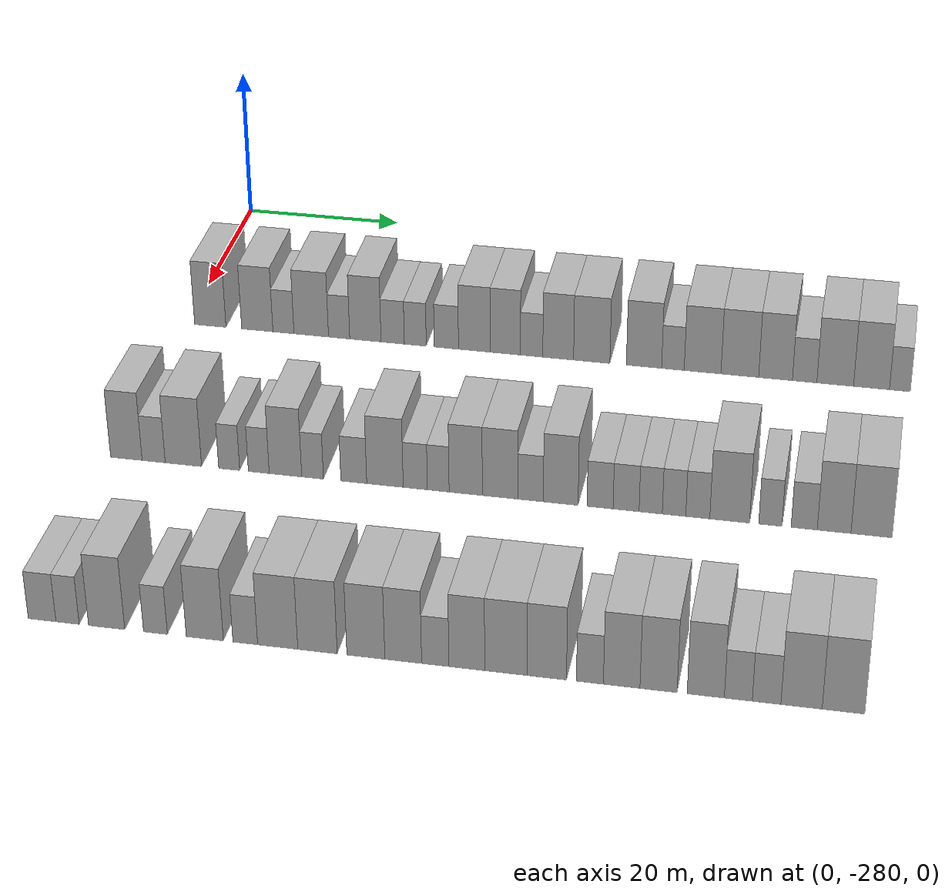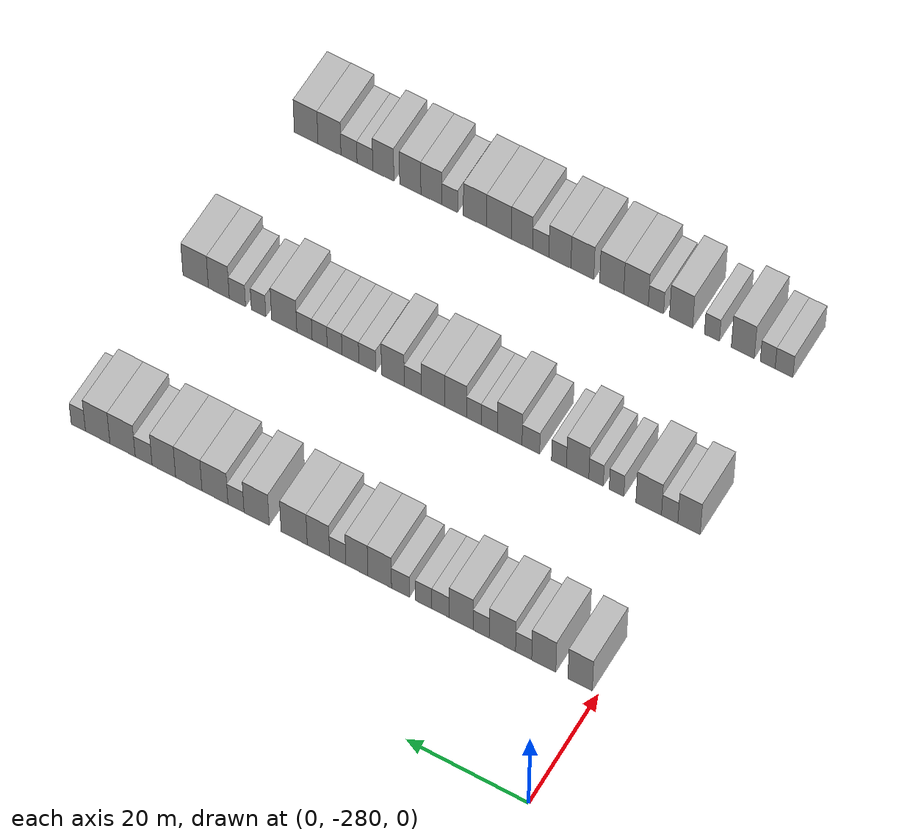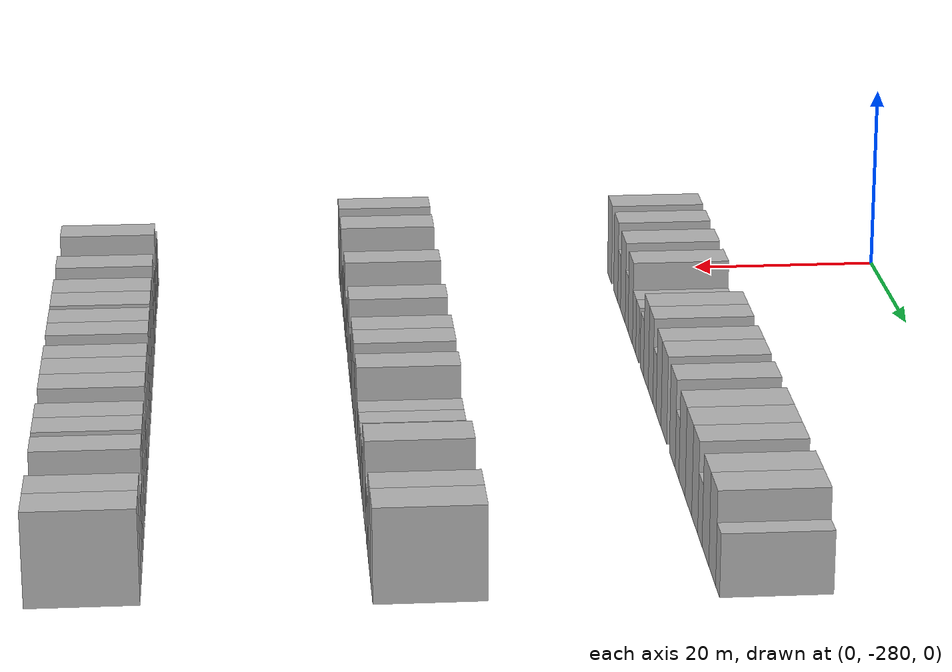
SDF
<sdf version="1.6">
 <world name="default">
  <model name="building_1">
   <static>1</static>
   <pose>25.0000 -277.0038 0 0.000000 0.000000 0.000000</pose>
   <link name="link">
    <pose>0 0 4.50 0 0 0</pose>
    <collision name="collision"><geometry><box><size>10.0000 3.9925 9.0000</size></box></geometry></collision>
    <visual name="visual">
     <cast_shadows>0</cast_shadows>
     <geometry><box><size>10.0000 3.9925 9.0000</size></box></geometry>
     <material>
      <script>
       <uri>model://HANNAS_wall/materials/scripts</uri>
       <uri>model://HANNAS_wall/materials/textures</uri>
       <name>vrc/HANNAS_wall</name>
      </script>
     </material>
    </visual>
   </link>
  </model>
  <model name="building_2">
   <static>1</static>
   <pose>25.0000 -271.0248 0 0.000000 0.000000 0.000000</pose>
   <link name="link">
    <pose>0 0 4.50 0 0 0</pose>
    <collision name="collision"><geometry><box><size>10.0000 3.9655 9.0000</size></box></geometry></collision>
    <visual name="visual">
     <cast_shadows>0</cast_shadows>
     <geometry><box><size>10.0000 3.9655 9.0000</size></box></geometry>
     <material>
      <script>
       <uri>model://HANNAS_wall/materials/scripts</uri>
       <uri>model://HANNAS_wall/materials/textures</uri>
       <name>vrc/HANNAS_wall</name>
      </script>
     </material>
    </visual>
   </link>
  </model>
  <model name="building_3">
   <static>1</static>
   <pose>25.0000 -267.7097 0 0.000000 0.000000 0.000000</pose>
   <link name="link">
    <pose>0 0 3.00 0 0 0</pose>
    <collision name="collision"><geometry><box><size>10.0000 2.6647 6.0000</size></box></geometry></collision>
    <visual name="visual">
     <cast_shadows>0</cast_shadows>
     <geometry><box><size>10.0000 2.6647 6.0000</size></box></geometry>
     <material>
      <script>
       <uri>model://HANNAS_wall/materials/scripts</uri>
       <uri>model://HANNAS_wall/materials/textures</uri>
       <name>vrc/HANNAS_wall</name>
      </script>
     </material>
    </visual>
   </link>
  </model>
  <model name="building_4">
   <static>1</static>
   <pose>25.0000 -264.2000 0 0.000000 0.000000 0.000000</pose>
   <link name="link">
    <pose>0 0 4.50 0 0 0</pose>
    <collision name="collision"><geometry><box><size>10.0000 4.3547 9.0000</size></box></geometry></collision>
    <visual name="visual">
     <cast_shadows>0</cast_shadows>
     <geometry><box><size>10.0000 4.3547 9.0000</size></box></geometry>
     <material>
      <script>
       <uri>model://HANNAS_wall/materials/scripts</uri>
       <uri>model://HANNAS_wall/materials/textures</uri>
       <name>vrc/HANNAS_wall</name>
      </script>
     </material>
    </visual>
   </link>
  </model>
  <model name="building_5">
   <static>1</static>
   <pose>25.0000 -260.6877 0 0.000000 0.000000 0.000000</pose>
   <link name="link">
    <pose>0 0 3.00 0 0 0</pose>
    <collision name="collision"><geometry><box><size>10.0000 2.6699 6.0000</size></box></geometry></collision>
    <visual name="visual">
     <cast_shadows>0</cast_shadows>
     <geometry><box><size>10.0000 2.6699 6.0000</size></box></geometry>
     <material>
      <script>
       <uri>model://HANNAS_wall/materials/scripts</uri>
       <uri>model://HANNAS_wall/materials/textures</uri>
       <name>vrc/HANNAS_wall</name>
      </script>
     </material>
    </visual>
   </link>
  </model>
  <model name="building_6">
   <static>1</static>
   <pose>25.0000 -257.3909 0 0.000000 0.000000 0.000000</pose>
   <link name="link">
    <pose>0 0 4.50 0 0 0</pose>
    <collision name="collision"><geometry><box><size>10.0000 3.9236 9.0000</size></box></geometry></collision>
    <visual name="visual">
     <cast_shadows>0</cast_shadows>
     <geometry><box><size>10.0000 3.9236 9.0000</size></box></geometry>
     <material>
      <script>
       <uri>model://HANNAS_wall/materials/scripts</uri>
       <uri>model://HANNAS_wall/materials/textures</uri>
       <name>vrc/HANNAS_wall</name>
      </script>
     </material>
    </visual>
   </link>
  </model>
  <model name="building_7">
   <static>1</static>
   <pose>25.0000 -253.9746 0 0.000000 0.000000 0.000000</pose>
   <link name="link">
    <pose>0 0 3.00 0 0 0</pose>
    <collision name="collision"><geometry><box><size>10.0000 2.9091 6.0000</size></box></geometry></collision>
    <visual name="visual">
     <cast_shadows>0</cast_shadows>
     <geometry><box><size>10.0000 2.9091 6.0000</size></box></geometry>
     <material>
      <script>
       <uri>model://HANNAS_wall/materials/scripts</uri>
       <uri>model://HANNAS_wall/materials/textures</uri>
       <name>vrc/HANNAS_wall</name>
      </script>
     </material>
    </visual>
   </link>
  </model>
  <model name="building_8">
   <static>1</static>
   <pose>25.0000 -251.1587 0 0.000000 0.000000 0.000000</pose>
   <link name="link">
    <pose>0 0 3.00 0 0 0</pose>
    <collision name="collision"><geometry><box><size>10.0000 2.7225 6.0000</size></box></geometry></collision>
    <visual name="visual">
     <cast_shadows>0</cast_shadows>
     <geometry><box><size>10.0000 2.7225 6.0000</size></box></geometry>
     <material>
      <script>
       <uri>model://HANNAS_wall/materials/scripts</uri>
       <uri>model://HANNAS_wall/materials/textures</uri>
       <name>vrc/HANNAS_wall</name>
      </script>
     </material>
    </visual>
   </link>
  </model>
  <model name="building_9">
   <static>1</static>
   <pose>25.0000 -247.2979 0 0.000000 0.000000 0.000000</pose>
   <link name="link">
    <pose>0 0 3.00 0 0 0</pose>
    <collision name="collision"><geometry><box><size>10.0000 2.9992 6.0000</size></box></geometry></collision>
    <visual name="visual">
     <cast_shadows>0</cast_shadows>
     <geometry><box><size>10.0000 2.9992 6.0000</size></box></geometry>
     <material>
      <script>
       <uri>model://HANNAS_wall/materials/scripts</uri>
       <uri>model://HANNAS_wall/materials/textures</uri>
       <name>vrc/HANNAS_wall</name>
      </script>
     </material>
    </visual>
   </link>
  </model>
  <model name="building_10">
   <static>1</static>
   <pose>25.0000 -243.8236 0 0.000000 0.000000 0.000000</pose>
   <link name="link">
    <pose>0 0 4.50 0 0 0</pose>
    <collision name="collision"><geometry><box><size>10.0000 3.9494 9.0000</size></box></geometry></collision>
    <visual name="visual">
     <cast_shadows>0</cast_shadows>
     <geometry><box><size>10.0000 3.9494 9.0000</size></box></geometry>
     <material>
      <script>
       <uri>model://HANNAS_wall/materials/scripts</uri>
       <uri>model://HANNAS_wall/materials/textures</uri>
       <name>vrc/HANNAS_wall</name>
      </script>
     </material>
    </visual>
   </link>
  </model>
  <model name="building_11">
   <static>1</static>
   <pose>25.0000 -240.0031 0 0.000000 0.000000 0.000000</pose>
   <link name="link">
    <pose>0 0 4.50 0 0 0</pose>
    <collision name="collision"><geometry><box><size>10.0000 3.6916 9.0000</size></box></geometry></collision>
    <visual name="visual">
     <cast_shadows>0</cast_shadows>
     <geometry><box><size>10.0000 3.6916 9.0000</size></box></geometry>
     <material>
      <script>
       <uri>model://HANNAS_wall/materials/scripts</uri>
       <uri>model://HANNAS_wall/materials/textures</uri>
       <name>vrc/HANNAS_wall</name>
      </script>
     </material>
    </visual>
   </link>
  </model>
  <model name="building_12">
   <static>1</static>
   <pose>25.0000 -236.7888 0 0.000000 0.000000 0.000000</pose>
   <link name="link">
    <pose>0 0 3.00 0 0 0</pose>
    <collision name="collision"><geometry><box><size>10.0000 2.7369 6.0000</size></box></geometry></collision>
    <visual name="visual">
     <cast_shadows>0</cast_shadows>
     <geometry><box><size>10.0000 2.7369 6.0000</size></box></geometry>
     <material>
      <script>
       <uri>model://HANNAS_wall/materials/scripts</uri>
       <uri>model://HANNAS_wall/materials/textures</uri>
       <name>vrc/HANNAS_wall</name>
      </script>
     </material>
    </visual>
   </link>
  </model>
  <model name="building_13">
   <static>1</static>
   <pose>25.0000 -233.5396 0 0.000000 0.000000 0.000000</pose>
   <link name="link">
    <pose>0 0 4.50 0 0 0</pose>
    <collision name="collision"><geometry><box><size>10.0000 3.7614 9.0000</size></box></geometry></collision>
    <visual name="visual">
     <cast_shadows>0</cast_shadows>
     <geometry><box><size>10.0000 3.7614 9.0000</size></box></geometry>
     <material>
      <script>
       <uri>model://HANNAS_wall/materials/scripts</uri>
       <uri>model://HANNAS_wall/materials/textures</uri>
       <name>vrc/HANNAS_wall</name>
      </script>
     </material>
    </visual>
   </link>
  </model>
  <model name="building_14">
   <static>1</static>
   <pose>25.0000 -229.4503 0 0.000000 0.000000 0.000000</pose>
   <link name="link">
    <pose>0 0 4.50 0 0 0</pose>
    <collision name="collision"><geometry><box><size>10.0000 4.4173 9.0000</size></box></geometry></collision>
    <visual name="visual">
     <cast_shadows>0</cast_shadows>
     <geometry><box><size>10.0000 4.4173 9.0000</size></box></geometry>
     <material>
      <script>
       <uri>model://HANNAS_wall/materials/scripts</uri>
       <uri>model://HANNAS_wall/materials/textures</uri>
       <name>vrc/HANNAS_wall</name>
      </script>
     </material>
    </visual>
   </link>
  </model>
  <model name="building_15">
   <static>1</static>
   <pose>25.0000 -223.1103 0 0.000000 0.000000 0.000000</pose>
   <link name="link">
    <pose>0 0 4.50 0 0 0</pose>
    <collision name="collision"><geometry><box><size>10.0000 4.2626 9.0000</size></box></geometry></collision>
    <visual name="visual">
     <cast_shadows>0</cast_shadows>
     <geometry><box><size>10.0000 4.2626 9.0000</size></box></geometry>
     <material>
      <script>
       <uri>model://HANNAS_wall/materials/scripts</uri>
       <uri>model://HANNAS_wall/materials/textures</uri>
       <name>vrc/HANNAS_wall</name>
      </script>
     </material>
    </visual>
   </link>
  </model>
  <model name="building_16">
   <static>1</static>
   <pose>25.0000 -219.6177 0 0.000000 0.000000 0.000000</pose>
   <link name="link">
    <pose>0 0 3.00 0 0 0</pose>
    <collision name="collision"><geometry><box><size>10.0000 2.7226 6.0000</size></box></geometry></collision>
    <visual name="visual">
     <cast_shadows>0</cast_shadows>
     <geometry><box><size>10.0000 2.7226 6.0000</size></box></geometry>
     <material>
      <script>
       <uri>model://HANNAS_wall/materials/scripts</uri>
       <uri>model://HANNAS_wall/materials/textures</uri>
       <name>vrc/HANNAS_wall</name>
      </script>
     </material>
    </visual>
   </link>
  </model>
  <model name="building_17">
   <static>1</static>
   <pose>25.0000 -216.0488 0 0.000000 0.000000 0.000000</pose>
   <link name="link">
    <pose>0 0 4.50 0 0 0</pose>
    <collision name="collision"><geometry><box><size>10.0000 4.4151 9.0000</size></box></geometry></collision>
    <visual name="visual">
     <cast_shadows>0</cast_shadows>
     <geometry><box><size>10.0000 4.4151 9.0000</size></box></geometry>
     <material>
      <script>
       <uri>model://HANNAS_wall/materials/scripts</uri>
       <uri>model://HANNAS_wall/materials/textures</uri>
       <name>vrc/HANNAS_wall</name>
      </script>
     </material>
    </visual>
   </link>
  </model>
  <model name="building_18">
   <static>1</static>
   <pose>25.0000 -211.5920 0 0.000000 0.000000 0.000000</pose>
   <link name="link">
    <pose>0 0 4.50 0 0 0</pose>
    <collision name="collision"><geometry><box><size>10.0000 4.4987 9.0000</size></box></geometry></collision>
    <visual name="visual">
     <cast_shadows>0</cast_shadows>
     <geometry><box><size>10.0000 4.4987 9.0000</size></box></geometry>
     <material>
      <script>
       <uri>model://HANNAS_wall/materials/scripts</uri>
       <uri>model://HANNAS_wall/materials/textures</uri>
       <name>vrc/HANNAS_wall</name>
      </script>
     </material>
    </visual>
   </link>
  </model>
  <model name="building_19">
   <static>1</static>
   <pose>25.0000 -207.3325 0 0.000000 0.000000 0.000000</pose>
   <link name="link">
    <pose>0 0 4.50 0 0 0</pose>
    <collision name="collision"><geometry><box><size>10.0000 4.0202 9.0000</size></box></geometry></collision>
    <visual name="visual">
     <cast_shadows>0</cast_shadows>
     <geometry><box><size>10.0000 4.0202 9.0000</size></box></geometry>
     <material>
      <script>
       <uri>model://HANNAS_wall/materials/scripts</uri>
       <uri>model://HANNAS_wall/materials/textures</uri>
       <name>vrc/HANNAS_wall</name>
      </script>
     </material>
    </visual>
   </link>
  </model>
  <model name="building_20">
   <static>1</static>
   <pose>25.0000 -203.8742 0 0.000000 0.000000 0.000000</pose>
   <link name="link">
    <pose>0 0 3.00 0 0 0</pose>
    <collision name="collision"><geometry><box><size>10.0000 2.8964 6.0000</size></box></geometry></collision>
    <visual name="visual">
     <cast_shadows>0</cast_shadows>
     <geometry><box><size>10.0000 2.8964 6.0000</size></box></geometry>
     <material>
      <script>
       <uri>model://HANNAS_wall/materials/scripts</uri>
       <uri>model://HANNAS_wall/materials/textures</uri>
       <name>vrc/HANNAS_wall</name>
      </script>
     </material>
    </visual>
   </link>
  </model>
  <model name="building_21">
   <static>1</static>
   <pose>25.0000 -200.2595 0 0.000000 0.000000 0.000000</pose>
   <link name="link">
    <pose>0 0 4.50 0 0 0</pose>
    <collision name="collision"><geometry><box><size>10.0000 4.3330 9.0000</size></box></geometry></collision>
    <visual name="visual">
     <cast_shadows>0</cast_shadows>
     <geometry><box><size>10.0000 4.3330 9.0000</size></box></geometry>
     <material>
      <script>
       <uri>model://HANNAS_wall/materials/scripts</uri>
       <uri>model://HANNAS_wall/materials/textures</uri>
       <name>vrc/HANNAS_wall</name>
      </script>
     </material>
    </visual>
   </link>
  </model>
  <model name="building_22">
   <static>1</static>
   <pose>25.0000 -195.9828 0 0.000000 0.000000 0.000000</pose>
   <link name="link">
    <pose>0 0 4.50 0 0 0</pose>
    <collision name="collision"><geometry><box><size>10.0000 4.2205 9.0000</size></box></geometry></collision>
    <visual name="visual">
     <cast_shadows>0</cast_shadows>
     <geometry><box><size>10.0000 4.2205 9.0000</size></box></geometry>
     <material>
      <script>
       <uri>model://HANNAS_wall/materials/scripts</uri>
       <uri>model://HANNAS_wall/materials/textures</uri>
       <name>vrc/HANNAS_wall</name>
      </script>
     </material>
    </visual>
   </link>
  </model>
  <model name="building_23">
   <static>1</static>
   <pose>25.0000 -192.6493 0 0.000000 0.000000 0.000000</pose>
   <link name="link">
    <pose>0 0 3.00 0 0 0</pose>
    <collision name="collision"><geometry><box><size>10.0000 2.4464 6.0000</size></box></geometry></collision>
    <visual name="visual">
     <cast_shadows>0</cast_shadows>
     <geometry><box><size>10.0000 2.4464 6.0000</size></box></geometry>
     <material>
      <script>
       <uri>model://HANNAS_wall/materials/scripts</uri>
       <uri>model://HANNAS_wall/materials/textures</uri>
       <name>vrc/HANNAS_wall</name>
      </script>
     </material>
    </visual>
   </link>
  </model>
  <model name="building_147">
   <static>1</static>
   <pose>55.0000 -278.1471 0 0.000000 0.000000 0.000000</pose>
   <link name="link">
    <pose>0 0 4.50 0 0 0</pose>
    <collision name="collision"><geometry><box><size>10.0000 3.7057 9.0000</size></box></geometry></collision>
    <visual name="visual">
     <cast_shadows>0</cast_shadows>
     <geometry><box><size>10.0000 3.7057 9.0000</size></box></geometry>
     <material>
      <script>
       <uri>model://HANNAS_wall/materials/scripts</uri>
       <uri>model://HANNAS_wall/materials/textures</uri>
       <name>vrc/HANNAS_wall</name>
      </script>
     </material>
    </visual>
   </link>
  </model>
  <model name="building_148">
   <static>1</static>
   <pose>55.0000 -274.9405 0 0.000000 0.000000 0.000000</pose>
   <link name="link">
    <pose>0 0 3.00 0 0 0</pose>
    <collision name="collision"><geometry><box><size>10.0000 2.7076 6.0000</size></box></geometry></collision>
    <visual name="visual">
     <cast_shadows>0</cast_shadows>
     <geometry><box><size>10.0000 2.7076 6.0000</size></box></geometry>
     <material>
      <script>
       <uri>model://HANNAS_wall/materials/scripts</uri>
       <uri>model://HANNAS_wall/materials/textures</uri>
       <name>vrc/HANNAS_wall</name>
      </script>
     </material>
    </visual>
   </link>
  </model>
  <model name="building_149">
   <static>1</static>
   <pose>55.0000 -271.4610 0 0.000000 0.000000 0.000000</pose>
   <link name="link">
    <pose>0 0 4.50 0 0 0</pose>
    <collision name="collision"><geometry><box><size>10.0000 4.2514 9.0000</size></box></geometry></collision>
    <visual name="visual">
     <cast_shadows>0</cast_shadows>
     <geometry><box><size>10.0000 4.2514 9.0000</size></box></geometry>
     <material>
      <script>
       <uri>model://HANNAS_wall/materials/scripts</uri>
       <uri>model://HANNAS_wall/materials/textures</uri>
       <name>vrc/HANNAS_wall</name>
      </script>
     </material>
    </visual>
   </link>
  </model>
  <model name="building_150">
   <static>1</static>
   <pose>55.0000 -266.1166 0 0.000000 0.000000 0.000000</pose>
   <link name="link">
    <pose>0 0 3.00 0 0 0</pose>
    <collision name="collision"><geometry><box><size>10.0000 2.4373 6.0000</size></box></geometry></collision>
    <visual name="visual">
     <cast_shadows>0</cast_shadows>
     <geometry><box><size>10.0000 2.4373 6.0000</size></box></geometry>
     <material>
      <script>
       <uri>model://HANNAS_wall/materials/scripts</uri>
       <uri>model://HANNAS_wall/materials/textures</uri>
       <name>vrc/HANNAS_wall</name>
      </script>
     </material>
    </visual>
   </link>
  </model>
  <model name="building_151">
   <static>1</static>
   <pose>55.0000 -262.6913 0 0.000000 0.000000 0.000000</pose>
   <link name="link">
    <pose>0 0 3.00 0 0 0</pose>
    <collision name="collision"><geometry><box><size>10.0000 2.4131 6.0000</size></box></geometry></collision>
    <visual name="visual">
     <cast_shadows>0</cast_shadows>
     <geometry><box><size>10.0000 2.4131 6.0000</size></box></geometry>
     <material>
      <script>
       <uri>model://HANNAS_wall/materials/scripts</uri>
       <uri>model://HANNAS_wall/materials/textures</uri>
       <name>vrc/HANNAS_wall</name>
      </script>
     </material>
    </visual>
   </link>
  </model>
  <model name="building_152">
   <static>1</static>
   <pose>55.0000 -259.6075 0 0.000000 0.000000 0.000000</pose>
   <link name="link">
    <pose>0 0 4.50 0 0 0</pose>
    <collision name="collision"><geometry><box><size>10.0000 3.7545 9.0000</size></box></geometry></collision>
    <visual name="visual">
     <cast_shadows>0</cast_shadows>
     <geometry><box><size>10.0000 3.7545 9.0000</size></box></geometry>
     <material>
      <script>
       <uri>model://HANNAS_wall/materials/scripts</uri>
       <uri>model://HANNAS_wall/materials/textures</uri>
       <name>vrc/HANNAS_wall</name>
      </script>
     </material>
    </visual>
   </link>
  </model>
  <model name="building_153">
   <static>1</static>
   <pose>55.0000 -256.4828 0 0.000000 0.000000 0.000000</pose>
   <link name="link">
    <pose>0 0 3.00 0 0 0</pose>
    <collision name="collision"><geometry><box><size>10.0000 2.4949 6.0000</size></box></geometry></collision>
    <visual name="visual">
     <cast_shadows>0</cast_shadows>
     <geometry><box><size>10.0000 2.4949 6.0000</size></box></geometry>
     <material>
      <script>
       <uri>model://HANNAS_wall/materials/scripts</uri>
       <uri>model://HANNAS_wall/materials/textures</uri>
       <name>vrc/HANNAS_wall</name>
      </script>
     </material>
    </visual>
   </link>
  </model>
  <model name="building_154">
   <static>1</static>
   <pose>55.0000 -251.7562 0 0.000000 0.000000 0.000000</pose>
   <link name="link">
    <pose>0 0 3.00 0 0 0</pose>
    <collision name="collision"><geometry><box><size>10.0000 2.9583 6.0000</size></box></geometry></collision>
    <visual name="visual">
     <cast_shadows>0</cast_shadows>
     <geometry><box><size>10.0000 2.9583 6.0000</size></box></geometry>
     <material>
      <script>
       <uri>model://HANNAS_wall/materials/scripts</uri>
       <uri>model://HANNAS_wall/materials/textures</uri>
       <name>vrc/HANNAS_wall</name>
      </script>
     </material>
    </visual>
   </link>
  </model>
  <model name="building_155">
   <static>1</static>
   <pose>55.0000 -248.1993 0 0.000000 0.000000 0.000000</pose>
   <link name="link">
    <pose>0 0 4.50 0 0 0</pose>
    <collision name="collision"><geometry><box><size>10.0000 4.1554 9.0000</size></box></geometry></collision>
    <visual name="visual">
     <cast_shadows>0</cast_shadows>
     <geometry><box><size>10.0000 4.1554 9.0000</size></box></geometry>
     <material>
      <script>
       <uri>model://HANNAS_wall/materials/scripts</uri>
       <uri>model://HANNAS_wall/materials/textures</uri>
       <name>vrc/HANNAS_wall</name>
      </script>
     </material>
    </visual>
   </link>
  </model>
  <model name="building_156">
   <static>1</static>
   <pose>55.0000 -244.7492 0 0.000000 0.000000 0.000000</pose>
   <link name="link">
    <pose>0 0 3.00 0 0 0</pose>
    <collision name="collision"><geometry><box><size>10.0000 2.7448 6.0000</size></box></geometry></collision>
    <visual name="visual">
     <cast_shadows>0</cast_shadows>
     <geometry><box><size>10.0000 2.7448 6.0000</size></box></geometry>
     <material>
      <script>
       <uri>model://HANNAS_wall/materials/scripts</uri>
       <uri>model://HANNAS_wall/materials/textures</uri>
       <name>vrc/HANNAS_wall</name>
      </script>
     </material>
    </visual>
   </link>
  </model>
  <model name="building_157">
   <static>1</static>
   <pose>55.0000 -242.1499 0 0.000000 0.000000 0.000000</pose>
   <link name="link">
    <pose>0 0 3.00 0 0 0</pose>
    <collision name="collision"><geometry><box><size>10.0000 2.4539 6.0000</size></box></geometry></collision>
    <visual name="visual">
     <cast_shadows>0</cast_shadows>
     <geometry><box><size>10.0000 2.4539 6.0000</size></box></geometry>
     <material>
      <script>
       <uri>model://HANNAS_wall/materials/scripts</uri>
       <uri>model://HANNAS_wall/materials/textures</uri>
       <name>vrc/HANNAS_wall</name>
      </script>
     </material>
    </visual>
   </link>
  </model>
  <model name="building_158">
   <static>1</static>
   <pose>55.0000 -239.0483 0 0.000000 0.000000 0.000000</pose>
   <link name="link">
    <pose>0 0 4.50 0 0 0</pose>
    <collision name="collision"><geometry><box><size>10.0000 3.7492 9.0000</size></box></geometry></collision>
    <visual name="visual">
     <cast_shadows>0</cast_shadows>
     <geometry><box><size>10.0000 3.7492 9.0000</size></box></geometry>
     <material>
      <script>
       <uri>model://HANNAS_wall/materials/scripts</uri>
       <uri>model://HANNAS_wall/materials/textures</uri>
       <name>vrc/HANNAS_wall</name>
      </script>
     </material>
    </visual>
   </link>
  </model>
  <model name="building_159">
   <static>1</static>
   <pose>55.0000 -235.1953 0 0.000000 0.000000 0.000000</pose>
   <link name="link">
    <pose>0 0 4.50 0 0 0</pose>
    <collision name="collision"><geometry><box><size>10.0000 3.9569 9.0000</size></box></geometry></collision>
    <visual name="visual">
     <cast_shadows>0</cast_shadows>
     <geometry><box><size>10.0000 3.9569 9.0000</size></box></geometry>
     <material>
      <script>
       <uri>model://HANNAS_wall/materials/scripts</uri>
       <uri>model://HANNAS_wall/materials/textures</uri>
       <name>vrc/HANNAS_wall</name>
      </script>
     </material>
    </visual>
   </link>
  </model>
  <model name="building_160">
   <static>1</static>
   <pose>55.0000 -231.7789 0 0.000000 0.000000 0.000000</pose>
   <link name="link">
    <pose>0 0 3.00 0 0 0</pose>
    <collision name="collision"><geometry><box><size>10.0000 2.8758 6.0000</size></box></geometry></collision>
    <visual name="visual">
     <cast_shadows>0</cast_shadows>
     <geometry><box><size>10.0000 2.8758 6.0000</size></box></geometry>
     <material>
      <script>
       <uri>model://HANNAS_wall/materials/scripts</uri>
       <uri>model://HANNAS_wall/materials/textures</uri>
       <name>vrc/HANNAS_wall</name>
      </script>
     </material>
    </visual>
   </link>
  </model>
  <model name="building_161">
   <static>1</static>
   <pose>55.0000 -228.4069 0 0.000000 0.000000 0.000000</pose>
   <link name="link">
    <pose>0 0 4.50 0 0 0</pose>
    <collision name="collision"><geometry><box><size>10.0000 3.8682 9.0000</size></box></geometry></collision>
    <visual name="visual">
     <cast_shadows>0</cast_shadows>
     <geometry><box><size>10.0000 3.8682 9.0000</size></box></geometry>
     <material>
      <script>
       <uri>model://HANNAS_wall/materials/scripts</uri>
       <uri>model://HANNAS_wall/materials/textures</uri>
       <name>vrc/HANNAS_wall</name>
      </script>
     </material>
    </visual>
   </link>
  </model>
  <model name="building_162">
   <static>1</static>
   <pose>55.0000 -224.0312 0 0.000000 0.000000 0.000000</pose>
   <link name="link">
    <pose>0 0 3.00 0 0 0</pose>
    <collision name="collision"><geometry><box><size>10.0000 2.8833 6.0000</size></box></geometry></collision>
    <visual name="visual">
     <cast_shadows>0</cast_shadows>
     <geometry><box><size>10.0000 2.8833 6.0000</size></box></geometry>
     <material>
      <script>
       <uri>model://HANNAS_wall/materials/scripts</uri>
       <uri>model://HANNAS_wall/materials/textures</uri>
       <name>vrc/HANNAS_wall</name>
      </script>
     </material>
    </visual>
   </link>
  </model>
  <model name="building_163">
   <static>1</static>
   <pose>55.0000 -221.1537 0 0.000000 0.000000 0.000000</pose>
   <link name="link">
    <pose>0 0 3.00 0 0 0</pose>
    <collision name="collision"><geometry><box><size>10.0000 2.8718 6.0000</size></box></geometry></collision>
    <visual name="visual">
     <cast_shadows>0</cast_shadows>
     <geometry><box><size>10.0000 2.8718 6.0000</size></box></geometry>
     <material>
      <script>
       <uri>model://HANNAS_wall/materials/scripts</uri>
       <uri>model://HANNAS_wall/materials/textures</uri>
       <name>vrc/HANNAS_wall</name>
      </script>
     </material>
    </visual>
   </link>
  </model>
  <model name="building_164">
   <static>1</static>
   <pose>55.0000 -218.4404 0 0.000000 0.000000 0.000000</pose>
   <link name="link">
    <pose>0 0 3.00 0 0 0</pose>
    <collision name="collision"><geometry><box><size>10.0000 2.5548 6.0000</size></box></geometry></collision>
    <visual name="visual">
     <cast_shadows>0</cast_shadows>
     <geometry><box><size>10.0000 2.5548 6.0000</size></box></geometry>
     <material>
      <script>
       <uri>model://HANNAS_wall/materials/scripts</uri>
       <uri>model://HANNAS_wall/materials/textures</uri>
       <name>vrc/HANNAS_wall</name>
      </script>
     </material>
    </visual>
   </link>
  </model>
  <model name="building_165">
   <static>1</static>
   <pose>55.0000 -215.8712 0 0.000000 0.000000 0.000000</pose>
   <link name="link">
    <pose>0 0 3.00 0 0 0</pose>
    <collision name="collision"><geometry><box><size>10.0000 2.5835 6.0000</size></box></geometry></collision>
    <visual name="visual">
     <cast_shadows>0</cast_shadows>
     <geometry><box><size>10.0000 2.5835 6.0000</size></box></geometry>
     <material>
      <script>
       <uri>model://HANNAS_wall/materials/scripts</uri>
       <uri>model://HANNAS_wall/materials/textures</uri>
       <name>vrc/HANNAS_wall</name>
      </script>
     </material>
    </visual>
   </link>
  </model>
  <model name="building_166">
   <static>1</static>
   <pose>55.0000 -213.2629 0 0.000000 0.000000 0.000000</pose>
   <link name="link">
    <pose>0 0 3.00 0 0 0</pose>
    <collision name="collision"><geometry><box><size>10.0000 2.6332 6.0000</size></box></geometry></collision>
    <visual name="visual">
     <cast_shadows>0</cast_shadows>
     <geometry><box><size>10.0000 2.6332 6.0000</size></box></geometry>
     <material>
      <script>
       <uri>model://HANNAS_wall/materials/scripts</uri>
       <uri>model://HANNAS_wall/materials/textures</uri>
       <name>vrc/HANNAS_wall</name>
      </script>
     </material>
    </visual>
   </link>
  </model>
  <model name="building_167">
   <static>1</static>
   <pose>55.0000 -209.7773 0 0.000000 0.000000 0.000000</pose>
   <link name="link">
    <pose>0 0 4.50 0 0 0</pose>
    <collision name="collision"><geometry><box><size>10.0000 4.3380 9.0000</size></box></geometry></collision>
    <visual name="visual">
     <cast_shadows>0</cast_shadows>
     <geometry><box><size>10.0000 4.3380 9.0000</size></box></geometry>
     <material>
      <script>
       <uri>model://HANNAS_wall/materials/scripts</uri>
       <uri>model://HANNAS_wall/materials/textures</uri>
       <name>vrc/HANNAS_wall</name>
      </script>
     </material>
    </visual>
   </link>
  </model>
  <model name="building_168">
   <static>1</static>
   <pose>55.0000 -205.3520 0 0.000000 0.000000 0.000000</pose>
   <link name="link">
    <pose>0 0 3.00 0 0 0</pose>
    <collision name="collision"><geometry><box><size>10.0000 2.5125 6.0000</size></box></geometry></collision>
    <visual name="visual">
     <cast_shadows>0</cast_shadows>
     <geometry><box><size>10.0000 2.5125 6.0000</size></box></geometry>
     <material>
      <script>
       <uri>model://HANNAS_wall/materials/scripts</uri>
       <uri>model://HANNAS_wall/materials/textures</uri>
       <name>vrc/HANNAS_wall</name>
      </script>
     </material>
    </visual>
   </link>
  </model>
  <model name="building_169">
   <static>1</static>
   <pose>55.0000 -201.6861 0 0.000000 0.000000 0.000000</pose>
   <link name="link">
    <pose>0 0 3.00 0 0 0</pose>
    <collision name="collision"><geometry><box><size>10.0000 2.8193 6.0000</size></box></geometry></collision>
    <visual name="visual">
     <cast_shadows>0</cast_shadows>
     <geometry><box><size>10.0000 2.8193 6.0000</size></box></geometry>
     <material>
      <script>
       <uri>model://HANNAS_wall/materials/scripts</uri>
       <uri>model://HANNAS_wall/materials/textures</uri>
       <name>vrc/HANNAS_wall</name>
      </script>
     </material>
    </visual>
   </link>
  </model>
  <model name="building_170">
   <static>1</static>
   <pose>55.0000 -198.4617 0 0.000000 0.000000 0.000000</pose>
   <link name="link">
    <pose>0 0 4.50 0 0 0</pose>
    <collision name="collision"><geometry><box><size>10.0000 3.6295 9.0000</size></box></geometry></collision>
    <visual name="visual">
     <cast_shadows>0</cast_shadows>
     <geometry><box><size>10.0000 3.6295 9.0000</size></box></geometry>
     <material>
      <script>
       <uri>model://HANNAS_wall/materials/scripts</uri>
       <uri>model://HANNAS_wall/materials/textures</uri>
       <name>vrc/HANNAS_wall</name>
      </script>
     </material>
    </visual>
   </link>
  </model>
  <model name="building_171">
   <static>1</static>
   <pose>55.0000 -194.4421 0 0.000000 0.000000 0.000000</pose>
   <link name="link">
    <pose>0 0 4.50 0 0 0</pose>
    <collision name="collision"><geometry><box><size>10.0000 4.4097 9.0000</size></box></geometry></collision>
    <visual name="visual">
     <cast_shadows>0</cast_shadows>
     <geometry><box><size>10.0000 4.4097 9.0000</size></box></geometry>
     <material>
      <script>
       <uri>model://HANNAS_wall/materials/scripts</uri>
       <uri>model://HANNAS_wall/materials/textures</uri>
       <name>vrc/HANNAS_wall</name>
      </script>
     </material>
    </visual>
   </link>
  </model>
  <model name="building_274">
   <static>1</static>
   <pose>85.0000 -277.5172 0 0.000000 0.000000 0.000000</pose>
   <link name="link">
    <pose>0 0 3.00 0 0 0</pose>
    <collision name="collision"><geometry><box><size>10.0000 2.9656 6.0000</size></box></geometry></collision>
    <visual name="visual">
     <cast_shadows>0</cast_shadows>
     <geometry><box><size>10.0000 2.9656 6.0000</size></box></geometry>
     <material>
      <script>
       <uri>model://HANNAS_wall/materials/scripts</uri>
       <uri>model://HANNAS_wall/materials/textures</uri>
       <name>vrc/HANNAS_wall</name>
      </script>
     </material>
    </visual>
   </link>
  </model>
  <model name="building_275">
   <static>1</static>
   <pose>85.0000 -274.7879 0 0.000000 0.000000 0.000000</pose>
   <link name="link">
    <pose>0 0 3.00 0 0 0</pose>
    <collision name="collision"><geometry><box><size>10.0000 2.4930 6.0000</size></box></geometry></collision>
    <visual name="visual">
     <cast_shadows>0</cast_shadows>
     <geometry><box><size>10.0000 2.4930 6.0000</size></box></geometry>
     <material>
      <script>
       <uri>model://HANNAS_wall/materials/scripts</uri>
       <uri>model://HANNAS_wall/materials/textures</uri>
       <name>vrc/HANNAS_wall</name>
      </script>
     </material>
    </visual>
   </link>
  </model>
  <model name="building_276">
   <static>1</static>
   <pose>85.0000 -270.6113 0 0.000000 0.000000 0.000000</pose>
   <link name="link">
    <pose>0 0 4.50 0 0 0</pose>
    <collision name="collision"><geometry><box><size>10.0000 3.8600 9.0000</size></box></geometry></collision>
    <visual name="visual">
     <cast_shadows>0</cast_shadows>
     <geometry><box><size>10.0000 3.8600 9.0000</size></box></geometry>
     <material>
      <script>
       <uri>model://HANNAS_wall/materials/scripts</uri>
       <uri>model://HANNAS_wall/materials/textures</uri>
       <name>vrc/HANNAS_wall</name>
      </script>
     </material>
    </visual>
   </link>
  </model>
  <model name="building_277">
   <static>1</static>
   <pose>85.0000 -265.4199 0 0.000000 0.000000 0.000000</pose>
   <link name="link">
    <pose>0 0 3.00 0 0 0</pose>
    <collision name="collision"><geometry><box><size>10.0000 2.5228 6.0000</size></box></geometry></collision>
    <visual name="visual">
     <cast_shadows>0</cast_shadows>
     <geometry><box><size>10.0000 2.5228 6.0000</size></box></geometry>
     <material>
      <script>
       <uri>model://HANNAS_wall/materials/scripts</uri>
       <uri>model://HANNAS_wall/materials/textures</uri>
       <name>vrc/HANNAS_wall</name>
      </script>
     </material>
    </visual>
   </link>
  </model>
  <model name="building_278">
   <static>1</static>
   <pose>85.0000 -260.2066 0 0.000000 0.000000 0.000000</pose>
   <link name="link">
    <pose>0 0 4.50 0 0 0</pose>
    <collision name="collision"><geometry><box><size>10.0000 3.9038 9.0000</size></box></geometry></collision>
    <visual name="visual">
     <cast_shadows>0</cast_shadows>
     <geometry><box><size>10.0000 3.9038 9.0000</size></box></geometry>
     <material>
      <script>
       <uri>model://HANNAS_wall/materials/scripts</uri>
       <uri>model://HANNAS_wall/materials/textures</uri>
       <name>vrc/HANNAS_wall</name>
      </script>
     </material>
    </visual>
   </link>
  </model>
  <model name="building_279">
   <static>1</static>
   <pose>85.0000 -255.9607 0 0.000000 0.000000 0.000000</pose>
   <link name="link">
    <pose>0 0 3.00 0 0 0</pose>
    <collision name="collision"><geometry><box><size>10.0000 2.5879 6.0000</size></box></geometry></collision>
    <visual name="visual">
     <cast_shadows>0</cast_shadows>
     <geometry><box><size>10.0000 2.5879 6.0000</size></box></geometry>
     <material>
      <script>
       <uri>model://HANNAS_wall/materials/scripts</uri>
       <uri>model://HANNAS_wall/materials/textures</uri>
       <name>vrc/HANNAS_wall</name>
      </script>
     </material>
    </visual>
   </link>
  </model>
  <model name="building_280">
   <static>1</static>
   <pose>85.0000 -252.5727 0 0.000000 0.000000 0.000000</pose>
   <link name="link">
    <pose>0 0 4.50 0 0 0</pose>
    <collision name="collision"><geometry><box><size>10.0000 4.1881 9.0000</size></box></geometry></collision>
    <visual name="visual">
     <cast_shadows>0</cast_shadows>
     <geometry><box><size>10.0000 4.1881 9.0000</size></box></geometry>
     <material>
      <script>
       <uri>model://HANNAS_wall/materials/scripts</uri>
       <uri>model://HANNAS_wall/materials/textures</uri>
       <name>vrc/HANNAS_wall</name>
      </script>
     </material>
    </visual>
   </link>
  </model>
  <model name="building_281">
   <static>1</static>
   <pose>85.0000 -248.4328 0 0.000000 0.000000 0.000000</pose>
   <link name="link">
    <pose>0 0 4.50 0 0 0</pose>
    <collision name="collision"><geometry><box><size>10.0000 4.0918 9.0000</size></box></geometry></collision>
    <visual name="visual">
     <cast_shadows>0</cast_shadows>
     <geometry><box><size>10.0000 4.0918 9.0000</size></box></geometry>
     <material>
      <script>
       <uri>model://HANNAS_wall/materials/scripts</uri>
       <uri>model://HANNAS_wall/materials/textures</uri>
       <name>vrc/HANNAS_wall</name>
      </script>
     </material>
    </visual>
   </link>
  </model>
  <model name="building_282">
   <static>1</static>
   <pose>85.0000 -243.4276 0 0.000000 0.000000 0.000000</pose>
   <link name="link">
    <pose>0 0 4.50 0 0 0</pose>
    <collision name="collision"><geometry><box><size>10.0000 3.9186 9.0000</size></box></geometry></collision>
    <visual name="visual">
     <cast_shadows>0</cast_shadows>
     <geometry><box><size>10.0000 3.9186 9.0000</size></box></geometry>
     <material>
      <script>
       <uri>model://HANNAS_wall/materials/scripts</uri>
       <uri>model://HANNAS_wall/materials/textures</uri>
       <name>vrc/HANNAS_wall</name>
      </script>
     </material>
    </visual>
   </link>
  </model>
  <model name="building_283">
   <static>1</static>
   <pose>85.0000 -239.5821 0 0.000000 0.000000 0.000000</pose>
   <link name="link">
    <pose>0 0 4.50 0 0 0</pose>
    <collision name="collision"><geometry><box><size>10.0000 3.7724 9.0000</size></box></geometry></collision>
    <visual name="visual">
     <cast_shadows>0</cast_shadows>
     <geometry><box><size>10.0000 3.7724 9.0000</size></box></geometry>
     <material>
      <script>
       <uri>model://HANNAS_wall/materials/scripts</uri>
       <uri>model://HANNAS_wall/materials/textures</uri>
       <name>vrc/HANNAS_wall</name>
      </script>
     </material>
    </visual>
   </link>
  </model>
  <model name="building_284">
   <static>1</static>
   <pose>85.0000 -236.3003 0 0.000000 0.000000 0.000000</pose>
   <link name="link">
    <pose>0 0 3.00 0 0 0</pose>
    <collision name="collision"><geometry><box><size>10.0000 2.7912 6.0000</size></box></geometry></collision>
    <visual name="visual">
     <cast_shadows>0</cast_shadows>
     <geometry><box><size>10.0000 2.7912 6.0000</size></box></geometry>
     <material>
      <script>
       <uri>model://HANNAS_wall/materials/scripts</uri>
       <uri>model://HANNAS_wall/materials/textures</uri>
       <name>vrc/HANNAS_wall</name>
      </script>
     </material>
    </visual>
   </link>
  </model>
  <model name="building_285">
   <static>1</static>
   <pose>85.0000 -233.0832 0 0.000000 0.000000 0.000000</pose>
   <link name="link">
    <pose>0 0 4.50 0 0 0</pose>
    <collision name="collision"><geometry><box><size>10.0000 3.6431 9.0000</size></box></geometry></collision>
    <visual name="visual">
     <cast_shadows>0</cast_shadows>
     <geometry><box><size>10.0000 3.6431 9.0000</size></box></geometry>
     <material>
      <script>
       <uri>model://HANNAS_wall/materials/scripts</uri>
       <uri>model://HANNAS_wall/materials/textures</uri>
       <name>vrc/HANNAS_wall</name>
      </script>
     </material>
    </visual>
   </link>
  </model>
  <model name="building_286">
   <static>1</static>
   <pose>85.0000 -229.1243 0 0.000000 0.000000 0.000000</pose>
   <link name="link">
    <pose>0 0 4.50 0 0 0</pose>
    <collision name="collision"><geometry><box><size>10.0000 4.2746 9.0000</size></box></geometry></collision>
    <visual name="visual">
     <cast_shadows>0</cast_shadows>
     <geometry><box><size>10.0000 4.2746 9.0000</size></box></geometry>
     <material>
      <script>
       <uri>model://HANNAS_wall/materials/scripts</uri>
       <uri>model://HANNAS_wall/materials/textures</uri>
       <name>vrc/HANNAS_wall</name>
      </script>
     </material>
    </visual>
   </link>
  </model>
  <model name="building_287">
   <static>1</static>
   <pose>85.0000 -224.9947 0 0.000000 0.000000 0.000000</pose>
   <link name="link">
    <pose>0 0 4.50 0 0 0</pose>
    <collision name="collision"><geometry><box><size>10.0000 3.9846 9.0000</size></box></geometry></collision>
    <visual name="visual">
     <cast_shadows>0</cast_shadows>
     <geometry><box><size>10.0000 3.9846 9.0000</size></box></geometry>
     <material>
      <script>
       <uri>model://HANNAS_wall/materials/scripts</uri>
       <uri>model://HANNAS_wall/materials/textures</uri>
       <name>vrc/HANNAS_wall</name>
      </script>
     </material>
    </visual>
   </link>
  </model>
  <model name="building_288">
   <static>1</static>
   <pose>85.0000 -220.6516 0 0.000000 0.000000 0.000000</pose>
   <link name="link">
    <pose>0 0 3.00 0 0 0</pose>
    <collision name="collision"><geometry><box><size>10.0000 2.7015 6.0000</size></box></geometry></collision>
    <visual name="visual">
     <cast_shadows>0</cast_shadows>
     <geometry><box><size>10.0000 2.7015 6.0000</size></box></geometry>
     <material>
      <script>
       <uri>model://HANNAS_wall/materials/scripts</uri>
       <uri>model://HANNAS_wall/materials/textures</uri>
       <name>vrc/HANNAS_wall</name>
      </script>
     </material>
    </visual>
   </link>
  </model>
  <model name="building_289">
   <static>1</static>
   <pose>85.0000 -217.4745 0 0.000000 0.000000 0.000000</pose>
   <link name="link">
    <pose>0 0 4.50 0 0 0</pose>
    <collision name="collision"><geometry><box><size>10.0000 3.6526 9.0000</size></box></geometry></collision>
    <visual name="visual">
     <cast_shadows>0</cast_shadows>
     <geometry><box><size>10.0000 3.6526 9.0000</size></box></geometry>
     <material>
      <script>
       <uri>model://HANNAS_wall/materials/scripts</uri>
       <uri>model://HANNAS_wall/materials/textures</uri>
       <name>vrc/HANNAS_wall</name>
      </script>
     </material>
    </visual>
   </link>
  </model>
  <model name="building_290">
   <static>1</static>
   <pose>85.0000 -213.8015 0 0.000000 0.000000 0.000000</pose>
   <link name="link">
    <pose>0 0 4.50 0 0 0</pose>
    <collision name="collision"><geometry><box><size>10.0000 3.6935 9.0000</size></box></geometry></collision>
    <visual name="visual">
     <cast_shadows>0</cast_shadows>
     <geometry><box><size>10.0000 3.6935 9.0000</size></box></geometry>
     <material>
      <script>
       <uri>model://HANNAS_wall/materials/scripts</uri>
       <uri>model://HANNAS_wall/materials/textures</uri>
       <name>vrc/HANNAS_wall</name>
      </script>
     </material>
    </visual>
   </link>
  </model>
  <model name="building_291">
   <static>1</static>
   <pose>85.0000 -209.1180 0 0.000000 0.000000 0.000000</pose>
   <link name="link">
    <pose>0 0 4.50 0 0 0</pose>
    <collision name="collision"><geometry><box><size>10.0000 3.6734 9.0000</size></box></geometry></collision>
    <visual name="visual">
     <cast_shadows>0</cast_shadows>
     <geometry><box><size>10.0000 3.6734 9.0000</size></box></geometry>
     <material>
      <script>
       <uri>model://HANNAS_wall/materials/scripts</uri>
       <uri>model://HANNAS_wall/materials/textures</uri>
       <name>vrc/HANNAS_wall</name>
      </script>
     </material>
    </visual>
   </link>
  </model>
  <model name="building_292">
   <static>1</static>
   <pose>85.0000 -205.9049 0 0.000000 0.000000 0.000000</pose>
   <link name="link">
    <pose>0 0 3.00 0 0 0</pose>
    <collision name="collision"><geometry><box><size>10.0000 2.7529 6.0000</size></box></geometry></collision>
    <visual name="visual">
     <cast_shadows>0</cast_shadows>
     <geometry><box><size>10.0000 2.7529 6.0000</size></box></geometry>
     <material>
      <script>
       <uri>model://HANNAS_wall/materials/scripts</uri>
       <uri>model://HANNAS_wall/materials/textures</uri>
       <name>vrc/HANNAS_wall</name>
      </script>
     </material>
    </visual>
   </link>
  </model>
  <model name="building_293">
   <static>1</static>
   <pose>85.0000 -203.1267 0 0.000000 0.000000 0.000000</pose>
   <link name="link">
    <pose>0 0 3.00 0 0 0</pose>
    <collision name="collision"><geometry><box><size>10.0000 2.8036 6.0000</size></box></geometry></collision>
    <visual name="visual">
     <cast_shadows>0</cast_shadows>
     <geometry><box><size>10.0000 2.8036 6.0000</size></box></geometry>
     <material>
      <script>
       <uri>model://HANNAS_wall/materials/scripts</uri>
       <uri>model://HANNAS_wall/materials/textures</uri>
       <name>vrc/HANNAS_wall</name>
      </script>
     </material>
    </visual>
   </link>
  </model>
  <model name="building_294">
   <static>1</static>
   <pose>85.0000 -199.7115 0 0.000000 0.000000 0.000000</pose>
   <link name="link">
    <pose>0 0 4.50 0 0 0</pose>
    <collision name="collision"><geometry><box><size>10.0000 4.0269 9.0000</size></box></geometry></collision>
    <visual name="visual">
     <cast_shadows>0</cast_shadows>
     <geometry><box><size>10.0000 4.0269 9.0000</size></box></geometry>
     <material>
      <script>
       <uri>model://HANNAS_wall/materials/scripts</uri>
       <uri>model://HANNAS_wall/materials/textures</uri>
       <name>vrc/HANNAS_wall</name>
      </script>
     </material>
    </visual>
   </link>
  </model>
  <model name="building_295">
   <static>1</static>
   <pose>85.0000 -195.6272 0 0.000000 0.000000 0.000000</pose>
   <link name="link">
    <pose>0 0 4.50 0 0 0</pose>
    <collision name="collision"><geometry><box><size>10.0000 4.1417 9.0000</size></box></geometry></collision>
    <visual name="visual">
     <cast_shadows>0</cast_shadows>
     <geometry><box><size>10.0000 4.1417 9.0000</size></box></geometry>
     <material>
      <script>
       <uri>model://HANNAS_wall/materials/scripts</uri>
       <uri>model://HANNAS_wall/materials/textures</uri>
       <name>vrc/HANNAS_wall</name>
      </script>
     </material>
    </visual>
   </link>
  </model>
 </world>
</sdf>
